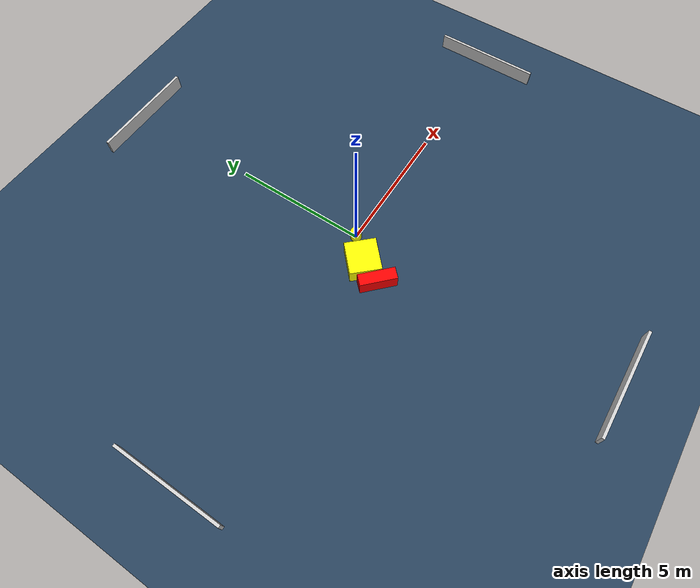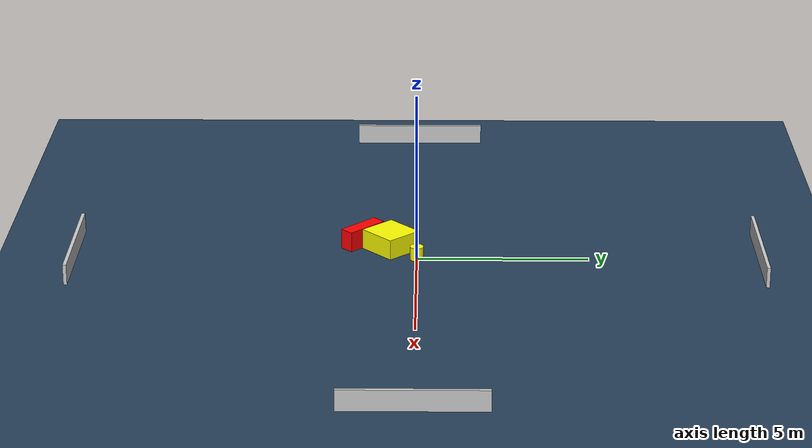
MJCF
<?xml version="1.0" ?>
<mujoco model="generated_environment">
  <option timestep="0.01" integrator="RK4" cone="elliptic"/>
  <default>
    <geom density="1"/>
  </default>
  <asset>
    <texture builtin="gradient" height="3072" name="skybox" rgb1="0.3 0.5 0.7" rgb2="0 0 0" type="skybox" width="512"/>
    <texture builtin="checker" height="300" name="groundplane" rgb1="0.2 0.3 0.4" rgb2="0.1 0.2 0.3" type="2d" width="300"/>
    <material name="groundplane" reflectance="0.2" texrepeat="5 5" texture="groundplane"/>
  </asset>
  <worldbody>
    <light dir="0 0 -1" directional="true" pos="0 0 1.5"/>
    <geom condim="3" friction="0.5 0.005 0.001" material="groundplane" name="floor" pos="0 0 0" size="0 0 0.05" type="plane"/>
    <body name="walls">
      <geom name="wall_1" condim="4" pos="-10.0 0.0 0.3" rgba="0.800000011920929 0.800000011920929 0.800000011920929 1.0" size="0.05 2.0 0.3" type="box"/>
      <geom name="wall_2" condim="4" pos="10.0 0.0 0.3" rgba="0.800000011920929 0.800000011920929 0.800000011920929 1.0" size="0.05 2.0 0.3" type="box"/>
      <geom name="wall_3" condim="4" pos="0.0 -10.0 0.3" rgba="0.800000011920929 0.800000011920929 0.800000011920929 1.0" size="2.0 0.05 0.3" type="box"/>
      <geom name="wall_4" condim="4" pos="0.0 10.0 0.3" rgba="0.800000011920929 0.800000011920929 0.800000011920929 1.0" size="2.0 0.05 0.3" type="box"/>
    </body>
    <body name="robot">
      <joint name="joint_x" type="slide" pos="0 0 0" axis="1 0 0"/>
      <joint name="joint_y" type="slide" pos="0 0 0" axis="0 1 0"/>
      <geom name="robot" type="cylinder" pos="0.0 0.0 0.2" size="0.2 0.2 0.0" mass="5.0" friction="1.0 0.005 0.0001" condim="4" rgba="1.0 1.0 0.0 1.0"/>
    </body>
    <body name="obstacle_1_movable">
      <geom name="obstacle_1_movable" condim="4" pos="-0.7565114357254762 -0.7723754475163094 0.3" euler="0 0 132.96692984707153" friction="0.0 0.005 0.001" rgba="1.0 1.0 0.0 1.0" size="0.5683899583858443 0.6066323631420751 0.3" type="box" mass="0.1"/>
      <joint type="free"/>
    </body>
    <body name="obstacle_2_static">
      <geom name="obstacle_2_static" condim="4" pos="-1.142982649955839 -1.6091170470215381 0.3" euler="0 0 135.44680078279916" friction="0.0 0.005 0.001" rgba="1.0 0.0 0.0 1.0" size="0.6633578608641182 0.21427452466779687 0.3" type="box"/>
    </body>
  </worldbody>
  <actuator>
    <motor name="actuator_x" joint="joint_x" gear="1" ctrlrange="-1 1"/>
    <motor name="actuator_y" joint="joint_y" gear="1" ctrlrange="-1 1"/>
  </actuator>
</mujoco>
